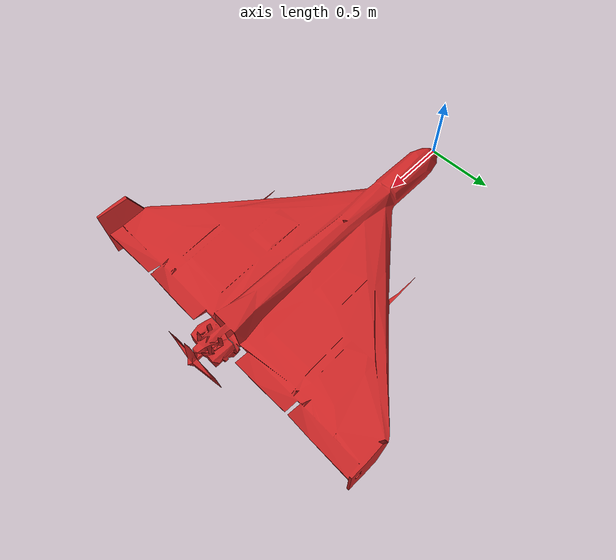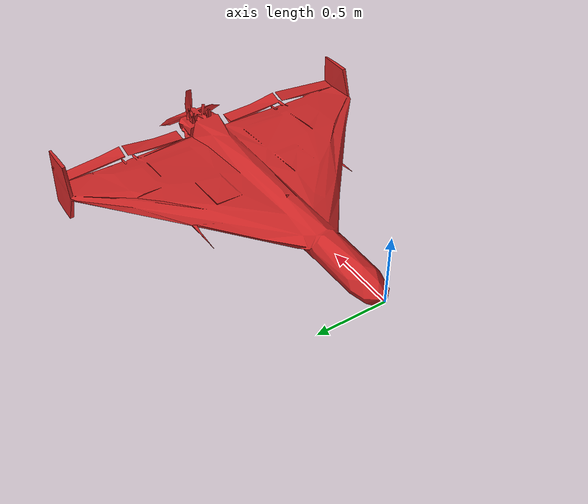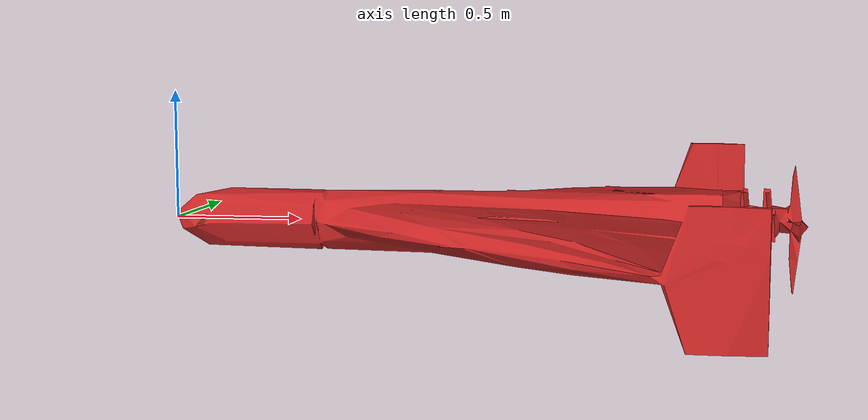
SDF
<?xml version="1.0" ?>
<sdf version="1.6">
  <model name="shahed136">
    <static>false</static>
    <link name="link">
      <gravity>0</gravity>
      <inertial>
        <mass>200.0</mass>
        <inertia>
          <ixx>15.0</ixx><ixy>0.0</ixy><ixz>0.0</ixz>
          <iyy>15.0</iyy><iyz>0.0</iyz>
          <izz>20.0</izz>
        </inertia>
      </inertial>
      <collision name="collision">
        <geometry>
          <box>
            <size>3.2 2.5 0.6</size>
          </box>
        </geometry>
      </collision>
      <visual name="visual">
        <pose>0 0 0 1.5708 0 1.5708</pose>
        <geometry>
          <mesh>
            <uri>model://shahed136/meshes/shahed.dae</uri>
            <scale>2.5 2.5 2.5</scale>
          </mesh>
        </geometry>
        <material>
          <script>
            <uri>file://media/materials/scripts/gazebo.material</uri>
            <name>Gazebo/Red</name>
          </script>
          <ambient>1 0 0 1</ambient>
          <diffuse>1 0 0 1</diffuse>
        </material>
      </visual>
    </link>
  </model>
</sdf>
